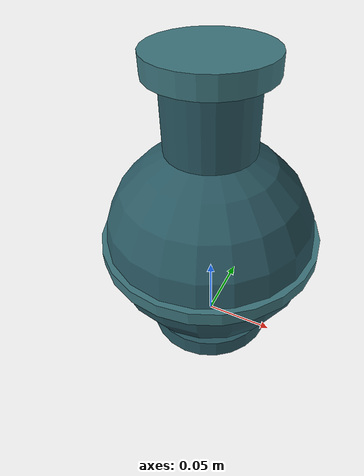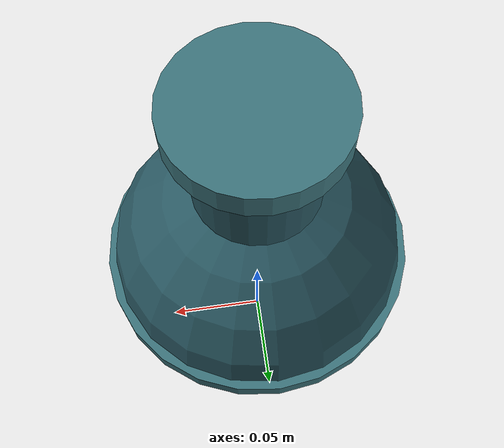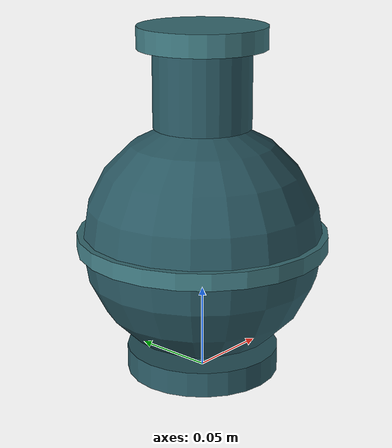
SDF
<?xml version="1.0"?>
<sdf version="1.6">
  <model name="decor_vase">
    <static>true</static>
    <link name="link">
      <visual name="foot">
        <pose>0 0 0.0075 0 0 0</pose>
        <geometry><cylinder><radius>0.046</radius><length>0.015</length></cylinder></geometry>
        <material><pbr><metal><metalness>0.00</metalness><roughness>0.18</roughness></metal></pbr><ambient>0.160 0.340 0.380 1</ambient><diffuse>0.160 0.340 0.380 1</diffuse><specular>0.3 0.3 0.3 1</specular><emissive>0 0 0 1</emissive></material>
      </visual>
      <visual name="body">
        <pose>0 0 0.082 0 0 0</pose>
        <geometry><ellipsoid><radii>0.072 0.072 0.072</radii></ellipsoid></geometry>
        <material><pbr><metal><metalness>0.00</metalness><roughness>0.18</roughness></metal></pbr><ambient>0.160 0.340 0.380 1</ambient><diffuse>0.160 0.340 0.380 1</diffuse><specular>0.3 0.3 0.3 1</specular><emissive>0 0 0 1</emissive></material>
      </visual>
      <visual name="band">
        <pose>0 0 0.082 0 0 0</pose>
        <geometry><cylinder><radius>0.075</radius><length>0.01</length></cylinder></geometry>
        <material><pbr><metal><metalness>0.00</metalness><roughness>0.15</roughness></metal></pbr><ambient>0.240 0.460 0.490 1</ambient><diffuse>0.240 0.460 0.490 1</diffuse><specular>0.3 0.3 0.3 1</specular><emissive>0 0 0 1</emissive></material>
      </visual>
      <visual name="neck">
        <pose>0 0 0.174 0 0 0</pose>
        <geometry><cylinder><radius>0.029</radius><length>0.048</length></cylinder></geometry>
        <material><pbr><metal><metalness>0.00</metalness><roughness>0.18</roughness></metal></pbr><ambient>0.160 0.340 0.380 1</ambient><diffuse>0.160 0.340 0.380 1</diffuse><specular>0.3 0.3 0.3 1</specular><emissive>0 0 0 1</emissive></material>
      </visual>
      <visual name="rim">
        <pose>0 0 0.2025 0 0 0</pose>
        <geometry><cylinder><radius>0.038</radius><length>0.013</length></cylinder></geometry>
        <material><pbr><metal><metalness>0.00</metalness><roughness>0.15</roughness></metal></pbr><ambient>0.240 0.460 0.490 1</ambient><diffuse>0.240 0.460 0.490 1</diffuse><specular>0.3 0.3 0.3 1</specular><emissive>0 0 0 1</emissive></material>
      </visual>
      <collision name="body">
        <pose>0 0 0.1045 0 0 0</pose>
        <geometry><cylinder><radius>0.075</radius><length>0.209</length></cylinder></geometry>
      </collision>
    </link>
    <allow_auto_disable>1</allow_auto_disable>
  </model>
</sdf>
